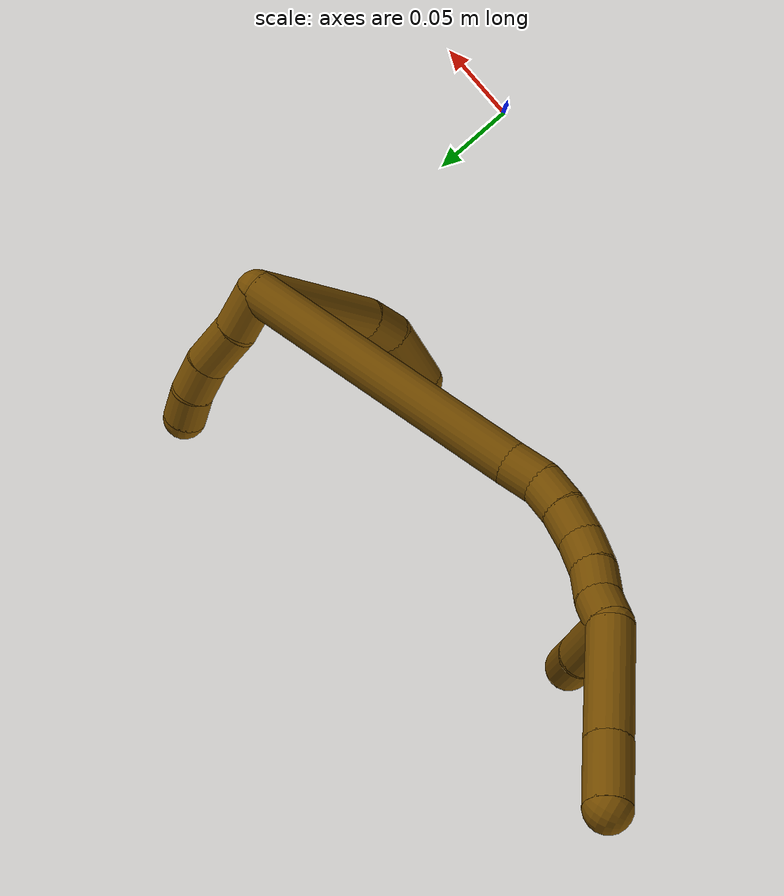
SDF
<sdf version="1.7">
 <world name="default">
  <model name="12">
   <static>0</static>
   <link name="12">
    <collision name="collision-cylinder-e_1_2_8">
     <pose>0.03473 0.01401 -0.021092 -2.55528 0.940822 -2.07014</pose>
     <geometry><cylinder><radius>0.0125</radius><length>0.08596</length></cylinder></geometry>
     <surface>
      <friction><ode><mu>1.16</mu><mu2>1.16</mu2><slip1>0</slip1><slip2>0</slip2></ode></friction>
      <contact><ode><kp>1e+06</kp><kd>1</kd><max_vel>0</max_vel><min_depth>0.001</min_depth></ode></contact>
     </surface>
    </collision>
    <visual name="visual-cylinder-e_1_2_8">
     <pose>0.03473 0.01401 -0.021092 -2.55528 0.940822 -2.07014</pose>
     <geometry><cylinder><radius>0.0125</radius><length>0.08596</length></cylinder></geometry>
     <material><ambient>0.466667 0.301961 0 1</ambient></material>
    </visual>
    <collision name="collision-cylinder-e_2_8_9">
     <pose>0.076921 0.033537 -0.048637 -2.43416 0.721001 -1.5915</pose>
     <geometry><cylinder><radius>0.0125</radius><length>0.022607</length></cylinder></geometry>
     <surface>
      <friction><ode><mu>1.16</mu><mu2>1.16</mu2><slip1>0</slip1><slip2>0</slip2></ode></friction>
      <contact><ode><kp>1e+06</kp><kd>1</kd><max_vel>0</max_vel><min_depth>0.001</min_depth></ode></contact>
     </surface>
    </collision>
    <visual name="visual-cylinder-e_2_8_9">
     <pose>0.076921 0.033537 -0.048637 -2.43416 0.721001 -1.5915</pose>
     <geometry><cylinder><radius>0.0125</radius><length>0.022607</length></cylinder></geometry>
     <material><ambient>0.466667 0.301961 0 1</ambient></material>
    </visual>
    <collision name="collision-cylinder-e_3_9_6">
     <pose>0.093076 0.054253 -0.066164 -2.20051 0.433026 -0.816313</pose>
     <geometry><cylinder><radius>0.0125</radius><length>0.041433</length></cylinder></geometry>
     <surface>
      <friction><ode><mu>1.16</mu><mu2>1.16</mu2><slip1>0</slip1><slip2>0</slip2></ode></friction>
      <contact><ode><kp>1e+06</kp><kd>1</kd><max_vel>0</max_vel><min_depth>0.001</min_depth></ode></contact>
     </surface>
    </collision>
    <visual name="visual-cylinder-e_3_9_6">
     <pose>0.093076 0.054253 -0.066164 -2.20051 0.433026 -0.816313</pose>
     <geometry><cylinder><radius>0.0125</radius><length>0.041433</length></cylinder></geometry>
     <material><ambient>0.466667 0.301961 0 1</ambient></material>
    </visual>
    <collision name="collision-cylinder-e_1_2_10">
     <pose>-0.002189 0.013397 0.001917 -1.42865 -0.160325 0.139088</pose>
     <geometry><cylinder><radius>0.0125</radius><length>0.027419</length></cylinder></geometry>
     <surface>
      <friction><ode><mu>1.16</mu><mu2>1.16</mu2><slip1>0</slip1><slip2>0</slip2></ode></friction>
      <contact><ode><kp>1e+06</kp><kd>1</kd><max_vel>0</max_vel><min_depth>0.001</min_depth></ode></contact>
     </surface>
    </collision>
    <visual name="visual-cylinder-e_1_2_10">
     <pose>-0.002189 0.013397 0.001917 -1.42865 -0.160325 0.139088</pose>
     <geometry><cylinder><radius>0.0125</radius><length>0.027419</length></cylinder></geometry>
     <material><ambient>0.466667 0.301961 0 1</ambient></material>
    </visual>
    <collision name="collision-cylinder-e_2_10_11">
     <pose>-0.005736 0.040921 0.008666 -1.24127 -0.090748 0.064895</pose>
     <geometry><cylinder><radius>0.0125</radius><length>0.029983</length></cylinder></geometry>
     <surface>
      <friction><ode><mu>1.16</mu><mu2>1.16</mu2><slip1>0</slip1><slip2>0</slip2></ode></friction>
      <contact><ode><kp>1e+06</kp><kd>1</kd><max_vel>0</max_vel><min_depth>0.001</min_depth></ode></contact>
     </surface>
    </collision>
    <visual name="visual-cylinder-e_2_10_11">
     <pose>-0.005736 0.040921 0.008666 -1.24127 -0.090748 0.064895</pose>
     <geometry><cylinder><radius>0.0125</radius><length>0.029983</length></cylinder></geometry>
     <material><ambient>0.466667 0.301961 0 1</ambient></material>
    </visual>
    <collision name="collision-cylinder-e_3_11_12">
     <pose>-0.008272 0.065981 0.014823 -1.45014 -0.106481 0.09437</pose>
     <geometry><cylinder><radius>0.0125</radius><length>0.022152</length></cylinder></geometry>
     <surface>
      <friction><ode><mu>1.16</mu><mu2>1.16</mu2><slip1>0</slip1><slip2>0</slip2></ode></friction>
      <contact><ode><kp>1e+06</kp><kd>1</kd><max_vel>0</max_vel><min_depth>0.001</min_depth></ode></contact>
     </surface>
    </collision>
    <visual name="visual-cylinder-e_3_11_12">
     <pose>-0.008272 0.065981 0.014823 -1.45014 -0.106481 0.09437</pose>
     <geometry><cylinder><radius>0.0125</radius><length>0.022152</length></cylinder></geometry>
     <material><ambient>0.466667 0.301961 0 1</ambient></material>
    </visual>
    <collision name="collision-cylinder-e_4_12_5">
     <pose>-0.008869 0.087117 0.016414 -1.54475 0.056744 -0.055286</pose>
     <geometry><cylinder><radius>0.0125</radius><length>0.020445</length></cylinder></geometry>
     <surface>
      <friction><ode><mu>1.16</mu><mu2>1.16</mu2><slip1>0</slip1><slip2>0</slip2></ode></friction>
      <contact><ode><kp>1e+06</kp><kd>1</kd><max_vel>0</max_vel><min_depth>0.001</min_depth></ode></contact>
     </surface>
    </collision>
    <visual name="visual-cylinder-e_4_12_5">
     <pose>-0.008869 0.087117 0.016414 -1.54475 0.056744 -0.055286</pose>
     <geometry><cylinder><radius>0.0125</radius><length>0.020445</length></cylinder></geometry>
     <material><ambient>0.466667 0.301961 0 1</ambient></material>
    </visual>
    <collision name="collision-cylinder-e_1_2_13">
     <pose>-0.01399 -0.002217 -0.087997 3.1164 -0.157611 -2.82528</pose>
     <geometry><cylinder><radius>0.0125</radius><length>0.178259</length></cylinder></geometry>
     <surface>
      <friction><ode><mu>1.16</mu><mu2>1.16</mu2><slip1>0</slip1><slip2>0</slip2></ode></friction>
      <contact><ode><kp>1e+06</kp><kd>1</kd><max_vel>0</max_vel><min_depth>0.001</min_depth></ode></contact>
     </surface>
    </collision>
    <visual name="visual-cylinder-e_1_2_13">
     <pose>-0.01399 -0.002217 -0.087997 3.1164 -0.157611 -2.82528</pose>
     <geometry><cylinder><radius>0.0125</radius><length>0.178259</length></cylinder></geometry>
     <material><ambient>0.466667 0.301961 0 1</ambient></material>
    </visual>
    <collision name="collision-cylinder-e_2_13_14">
     <pose>-0.030034 -0.005311 -0.186257 3.05637 -0.196858 -2.32637</pose>
     <geometry><cylinder><radius>0.0125</radius><length>0.021007</length></cylinder></geometry>
     <surface>
      <friction><ode><mu>1.16</mu><mu2>1.16</mu2><slip1>0</slip1><slip2>0</slip2></ode></friction>
      <contact><ode><kp>1e+06</kp><kd>1</kd><max_vel>0</max_vel><min_depth>0.001</min_depth></ode></contact>
     </surface>
    </collision>
    <visual name="visual-cylinder-e_2_13_14">
     <pose>-0.030034 -0.005311 -0.186257 3.05637 -0.196858 -2.32637</pose>
     <geometry><cylinder><radius>0.0125</radius><length>0.021007</length></cylinder></geometry>
     <material><ambient>0.466667 0.301961 0 1</ambient></material>
    </visual>
    <collision name="collision-cylinder-e_3_14_15">
     <pose>-0.036856 -0.005875 -0.205371 -3.10634 -0.493888 3.00196</pose>
     <geometry><cylinder><radius>0.0125</radius><length>0.020116</length></cylinder></geometry>
     <surface>
      <friction><ode><mu>1.16</mu><mu2>1.16</mu2><slip1>0</slip1><slip2>0</slip2></ode></friction>
      <contact><ode><kp>1e+06</kp><kd>1</kd><max_vel>0</max_vel><min_depth>0.001</min_depth></ode></contact>
     </surface>
    </collision>
    <visual name="visual-cylinder-e_3_14_15">
     <pose>-0.036856 -0.005875 -0.205371 -3.10634 -0.493888 3.00196</pose>
     <geometry><cylinder><radius>0.0125</radius><length>0.020116</length></cylinder></geometry>
     <material><ambient>0.466667 0.301961 0 1</ambient></material>
    </visual>
    <collision name="collision-cylinder-e_4_15_16">
     <pose>-0.047256 -0.004012 -0.22268 -2.9602 -0.579755 2.5497</pose>
     <geometry><cylinder><radius>0.0125</radius><length>0.02056</length></cylinder></geometry>
     <surface>
      <friction><ode><mu>1.16</mu><mu2>1.16</mu2><slip1>0</slip1><slip2>0</slip2></ode></friction>
      <contact><ode><kp>1e+06</kp><kd>1</kd><max_vel>0</max_vel><min_depth>0.001</min_depth></ode></contact>
     </surface>
    </collision>
    <visual name="visual-cylinder-e_4_15_16">
     <pose>-0.047256 -0.004012 -0.22268 -2.9602 -0.579755 2.5497</pose>
     <geometry><cylinder><radius>0.0125</radius><length>0.02056</length></cylinder></geometry>
     <material><ambient>0.466667 0.301961 0 1</ambient></material>
    </visual>
    <collision name="collision-cylinder-e_5_16_17">
     <pose>-0.060002 -0.001855 -0.238179 -3.05576 -0.788896 2.936</pose>
     <geometry><cylinder><radius>0.0125</radius><length>0.020055</length></cylinder></geometry>
     <surface>
      <friction><ode><mu>1.16</mu><mu2>1.16</mu2><slip1>0</slip1><slip2>0</slip2></ode></friction>
      <contact><ode><kp>1e+06</kp><kd>1</kd><max_vel>0</max_vel><min_depth>0.001</min_depth></ode></contact>
     </surface>
    </collision>
    <visual name="visual-cylinder-e_5_16_17">
     <pose>-0.060002 -0.001855 -0.238179 -3.05576 -0.788896 2.936</pose>
     <geometry><cylinder><radius>0.0125</radius><length>0.020055</length></cylinder></geometry>
     <material><ambient>0.466667 0.301961 0 1</ambient></material>
    </visual>
    <collision name="collision-cylinder-e_6_17_18">
     <pose>-0.075217 8.9e-05 -0.250931 -2.9116 -0.943929 2.69652</pose>
     <geometry><cylinder><radius>0.0125</radius><length>0.020002</length></cylinder></geometry>
     <surface>
      <friction><ode><mu>1.16</mu><mu2>1.16</mu2><slip1>0</slip1><slip2>0</slip2></ode></friction>
      <contact><ode><kp>1e+06</kp><kd>1</kd><max_vel>0</max_vel><min_depth>0.001</min_depth></ode></contact>
     </surface>
    </collision>
    <visual name="visual-cylinder-e_6_17_18">
     <pose>-0.075217 8.9e-05 -0.250931 -2.9116 -0.943929 2.69652</pose>
     <geometry><cylinder><radius>0.0125</radius><length>0.020002</length></cylinder></geometry>
     <material><ambient>0.466667 0.301961 0 1</ambient></material>
    </visual>
    <collision name="collision-cylinder-e_7_18_1">
     <pose>-0.091018 0.000374 -0.262936 2.97593 -0.878922 -2.79202</pose>
     <geometry><cylinder><radius>0.0125</radius><length>0.020001</length></cylinder></geometry>
     <surface>
      <friction><ode><mu>1.16</mu><mu2>1.16</mu2><slip1>0</slip1><slip2>0</slip2></ode></friction>
      <contact><ode><kp>1e+06</kp><kd>1</kd><max_vel>0</max_vel><min_depth>0.001</min_depth></ode></contact>
     </surface>
    </collision>
    <visual name="visual-cylinder-e_7_18_1">
     <pose>-0.091018 0.000374 -0.262936 2.97593 -0.878922 -2.79202</pose>
     <geometry><cylinder><radius>0.0125</radius><length>0.020001</length></cylinder></geometry>
     <material><ambient>0.466667 0.301961 0 1</ambient></material>
    </visual>
    <collision name="collision-cylinder-e_1_1_19">
     <pose>-0.125806 0.008278 -0.284097 -2.59942 -1.00093 2.20125</pose>
     <geometry><cylinder><radius>0.0125</radius><length>0.064343</length></cylinder></geometry>
     <surface>
      <friction><ode><mu>1.16</mu><mu2>1.16</mu2><slip1>0</slip1><slip2>0</slip2></ode></friction>
      <contact><ode><kp>1e+06</kp><kd>1</kd><max_vel>0</max_vel><min_depth>0.001</min_depth></ode></contact>
     </surface>
    </collision>
    <visual name="visual-cylinder-e_1_1_19">
     <pose>-0.125806 0.008278 -0.284097 -2.59942 -1.00093 2.20125</pose>
     <geometry><cylinder><radius>0.0125</radius><length>0.064343</length></cylinder></geometry>
     <material><ambient>0.466667 0.301961 0 1</ambient></material>
    </visual>
    <collision name="collision-cylinder-e_2_19_4">
     <pose>-0.167992 0.021827 -0.307259 -2.63591 -1.01008 2.26725</pose>
     <geometry><cylinder><radius>0.0125</radius><length>0.035657</length></cylinder></geometry>
     <surface>
      <friction><ode><mu>1.16</mu><mu2>1.16</mu2><slip1>0</slip1><slip2>0</slip2></ode></friction>
      <contact><ode><kp>1e+06</kp><kd>1</kd><max_vel>0</max_vel><min_depth>0.001</min_depth></ode></contact>
     </surface>
    </collision>
    <visual name="visual-cylinder-e_2_19_4">
     <pose>-0.167992 0.021827 -0.307259 -2.63591 -1.01008 2.26725</pose>
     <geometry><cylinder><radius>0.0125</radius><length>0.035657</length></cylinder></geometry>
     <material><ambient>0.466667 0.301961 0 1</ambient></material>
    </visual>
    <collision name="collision-cylinder-e_1_1_20">
     <pose>-0.089512 0.019214 -0.264624 -1.34334 0.423594 -0.338602</pose>
     <geometry><cylinder><radius>0.0125</radius><length>0.044795</length></cylinder></geometry>
     <surface>
      <friction><ode><mu>1.16</mu><mu2>1.16</mu2><slip1>0</slip1><slip2>0</slip2></ode></friction>
      <contact><ode><kp>1e+06</kp><kd>1</kd><max_vel>0</max_vel><min_depth>0.001</min_depth></ode></contact>
     </surface>
    </collision>
    <visual name="visual-cylinder-e_1_1_20">
     <pose>-0.089512 0.019214 -0.264624 -1.34334 0.423594 -0.338602</pose>
     <geometry><cylinder><radius>0.0125</radius><length>0.044795</length></cylinder></geometry>
     <material><ambient>0.466667 0.301961 0 1</ambient></material>
    </visual>
    <collision name="collision-cylinder-e_2_20_3">
     <pose>-0.062687 0.059886 -0.255589 -1.36068 0.692336 -0.567984</pose>
     <geometry><cylinder><radius>0.0125</radius><length>0.055205</length></cylinder></geometry>
     <surface>
      <friction><ode><mu>1.16</mu><mu2>1.16</mu2><slip1>0</slip1><slip2>0</slip2></ode></friction>
      <contact><ode><kp>1e+06</kp><kd>1</kd><max_vel>0</max_vel><min_depth>0.001</min_depth></ode></contact>
     </surface>
    </collision>
    <visual name="visual-cylinder-e_2_20_3">
     <pose>-0.062687 0.059886 -0.255589 -1.36068 0.692336 -0.567984</pose>
     <geometry><cylinder><radius>0.0125</radius><length>0.055205</length></cylinder></geometry>
     <material><ambient>0.466667 0.301961 0 1</ambient></material>
    </visual>
    <collision name="collision-sphere-3">
     <pose>-0.045067 0.080666 -0.251157 0 -0 0</pose>
     <geometry><sphere><radius>0.0125</radius></sphere></geometry>
     <surface>
      <friction><ode><mu>1.16</mu><mu2>1.16</mu2><slip1>0</slip1><slip2>0</slip2></ode></friction>
      <contact><ode><kp>1e+06</kp><kd>1</kd><max_vel>0</max_vel><min_depth>0.001</min_depth></ode></contact>
     </surface>
    </collision>
    <visual name="visual-sphere-3">
     <pose>-0.045067 0.080666 -0.251157 0 -0 0</pose>
     <geometry><sphere><radius>0.0125</radius></sphere></geometry>
     <material><ambient>0.466667 0.301961 0 1</ambient></material>
    </visual>
    <collision name="collision-sphere-20">
     <pose>-0.080306 0.039106 -0.26002 0 -0 0</pose>
     <geometry><sphere><radius>0.0125</radius></sphere></geometry>
     <surface>
      <friction><ode><mu>1.16</mu><mu2>1.16</mu2><slip1>0</slip1><slip2>0</slip2></ode></friction>
      <contact><ode><kp>1e+06</kp><kd>1</kd><max_vel>0</max_vel><min_depth>0.001</min_depth></ode></contact>
     </surface>
    </collision>
    <visual name="visual-sphere-20">
     <pose>-0.080306 0.039106 -0.26002 0 -0 0</pose>
     <geometry><sphere><radius>0.0125</radius></sphere></geometry>
     <material><ambient>0.466667 0.301961 0 1</ambient></material>
    </visual>
    <collision name="collision-sphere-4">
     <pose>-0.183091 0.02642 -0.315553 0 -0 0</pose>
     <geometry><sphere><radius>0.0125</radius></sphere></geometry>
     <surface>
      <friction><ode><mu>1.16</mu><mu2>1.16</mu2><slip1>0</slip1><slip2>0</slip2></ode></friction>
      <contact><ode><kp>1e+06</kp><kd>1</kd><max_vel>0</max_vel><min_depth>0.001</min_depth></ode></contact>
     </surface>
    </collision>
    <visual name="visual-sphere-4">
     <pose>-0.183091 0.02642 -0.315553 0 -0 0</pose>
     <geometry><sphere><radius>0.0125</radius></sphere></geometry>
     <material><ambient>0.466667 0.301961 0 1</ambient></material>
    </visual>
    <collision name="collision-sphere-11">
     <pose>-0.007094 0.055048 0.013497 0 -0 0</pose>
     <geometry><sphere><radius>0.0125</radius></sphere></geometry>
     <surface>
      <friction><ode><mu>1.16</mu><mu2>1.16</mu2><slip1>0</slip1><slip2>0</slip2></ode></friction>
      <contact><ode><kp>1e+06</kp><kd>1</kd><max_vel>0</max_vel><min_depth>0.001</min_depth></ode></contact>
     </surface>
    </collision>
    <visual name="visual-sphere-11">
     <pose>-0.007094 0.055048 0.013497 0 -0 0</pose>
     <geometry><sphere><radius>0.0125</radius></sphere></geometry>
     <material><ambient>0.466667 0.301961 0 1</ambient></material>
    </visual>
    <collision name="collision-sphere-10">
     <pose>-0.004377 0.026795 0.003835 0 -0 0</pose>
     <geometry><sphere><radius>0.0125</radius></sphere></geometry>
     <surface>
      <friction><ode><mu>1.16</mu><mu2>1.16</mu2><slip1>0</slip1><slip2>0</slip2></ode></friction>
      <contact><ode><kp>1e+06</kp><kd>1</kd><max_vel>0</max_vel><min_depth>0.001</min_depth></ode></contact>
     </surface>
    </collision>
    <visual name="visual-sphere-10">
     <pose>-0.004377 0.026795 0.003835 0 -0 0</pose>
     <geometry><sphere><radius>0.0125</radius></sphere></geometry>
     <material><ambient>0.466667 0.301961 0 1</ambient></material>
    </visual>
    <collision name="collision-sphere-6">
     <pose>0.101769 0.06945 -0.077238 0 -0 0</pose>
     <geometry><sphere><radius>0.0125</radius></sphere></geometry>
     <surface>
      <friction><ode><mu>1.16</mu><mu2>1.16</mu2><slip1>0</slip1><slip2>0</slip2></ode></friction>
      <contact><ode><kp>1e+06</kp><kd>1</kd><max_vel>0</max_vel><min_depth>0.001</min_depth></ode></contact>
     </surface>
    </collision>
    <visual name="visual-sphere-6">
     <pose>0.101769 0.06945 -0.077238 0 -0 0</pose>
     <geometry><sphere><radius>0.0125</radius></sphere></geometry>
     <material><ambient>0.466667 0.301961 0 1</ambient></material>
    </visual>
    <collision name="collision-sphere-9">
     <pose>0.084383 0.039055 -0.05509 0 -0 0</pose>
     <geometry><sphere><radius>0.0125</radius></sphere></geometry>
     <surface>
      <friction><ode><mu>1.16</mu><mu2>1.16</mu2><slip1>0</slip1><slip2>0</slip2></ode></friction>
      <contact><ode><kp>1e+06</kp><kd>1</kd><max_vel>0</max_vel><min_depth>0.001</min_depth></ode></contact>
     </surface>
    </collision>
    <visual name="visual-sphere-9">
     <pose>0.084383 0.039055 -0.05509 0 -0 0</pose>
     <geometry><sphere><radius>0.0125</radius></sphere></geometry>
     <material><ambient>0.466667 0.301961 0 1</ambient></material>
    </visual>
    <collision name="collision-sphere-2">
     <geometry><sphere><radius>0.0125</radius></sphere></geometry>
     <surface>
      <friction><ode><mu>1.16</mu><mu2>1.16</mu2><slip1>0</slip1><slip2>0</slip2></ode></friction>
      <contact><ode><kp>1e+06</kp><kd>1</kd><max_vel>0</max_vel><min_depth>0.001</min_depth></ode></contact>
     </surface>
    </collision>
    <visual name="visual-sphere-2">
     <geometry><sphere><radius>0.0125</radius></sphere></geometry>
     <material><ambient>0.466667 0.301961 0 1</ambient></material>
    </visual>
    <collision name="collision-sphere-19">
     <pose>-0.152894 0.017234 -0.298965 0 -0 0</pose>
     <geometry><sphere><radius>0.0125</radius></sphere></geometry>
     <surface>
      <friction><ode><mu>1.16</mu><mu2>1.16</mu2><slip1>0</slip1><slip2>0</slip2></ode></friction>
      <contact><ode><kp>1e+06</kp><kd>1</kd><max_vel>0</max_vel><min_depth>0.001</min_depth></ode></contact>
     </surface>
    </collision>
    <visual name="visual-sphere-19">
     <pose>-0.152894 0.017234 -0.298965 0 -0 0</pose>
     <geometry><sphere><radius>0.0125</radius></sphere></geometry>
     <material><ambient>0.466667 0.301961 0 1</ambient></material>
    </visual>
    <collision name="collision-sphere-8">
     <pose>0.06946 0.028019 -0.042184 0 -0 0</pose>
     <geometry><sphere><radius>0.0125</radius></sphere></geometry>
     <surface>
      <friction><ode><mu>1.16</mu><mu2>1.16</mu2><slip1>0</slip1><slip2>0</slip2></ode></friction>
      <contact><ode><kp>1e+06</kp><kd>1</kd><max_vel>0</max_vel><min_depth>0.001</min_depth></ode></contact>
     </surface>
    </collision>
    <visual name="visual-sphere-8">
     <pose>0.06946 0.028019 -0.042184 0 -0 0</pose>
     <geometry><sphere><radius>0.0125</radius></sphere></geometry>
     <material><ambient>0.466667 0.301961 0 1</ambient></material>
    </visual>
    <collision name="collision-sphere-12">
     <pose>-0.009449 0.076915 0.016148 0 -0 0</pose>
     <geometry><sphere><radius>0.0125</radius></sphere></geometry>
     <surface>
      <friction><ode><mu>1.16</mu><mu2>1.16</mu2><slip1>0</slip1><slip2>0</slip2></ode></friction>
      <contact><ode><kp>1e+06</kp><kd>1</kd><max_vel>0</max_vel><min_depth>0.001</min_depth></ode></contact>
     </surface>
    </collision>
    <visual name="visual-sphere-12">
     <pose>-0.009449 0.076915 0.016148 0 -0 0</pose>
     <geometry><sphere><radius>0.0125</radius></sphere></geometry>
     <material><ambient>0.466667 0.301961 0 1</ambient></material>
    </visual>
    <collision name="collision-sphere-5">
     <pose>-0.008289 0.09732 0.01668 0 -0 0</pose>
     <geometry><sphere><radius>0.0125</radius></sphere></geometry>
     <surface>
      <friction><ode><mu>1.16</mu><mu2>1.16</mu2><slip1>0</slip1><slip2>0</slip2></ode></friction>
      <contact><ode><kp>1e+06</kp><kd>1</kd><max_vel>0</max_vel><min_depth>0.001</min_depth></ode></contact>
     </surface>
    </collision>
    <visual name="visual-sphere-5">
     <pose>-0.008289 0.09732 0.01668 0 -0 0</pose>
     <geometry><sphere><radius>0.0125</radius></sphere></geometry>
     <material><ambient>0.466667 0.301961 0 1</ambient></material>
    </visual>
    <collision name="collision-sphere-13">
     <pose>-0.027979 -0.004434 -0.175994 0 -0 0</pose>
     <geometry><sphere><radius>0.0125</radius></sphere></geometry>
     <surface>
      <friction><ode><mu>1.16</mu><mu2>1.16</mu2><slip1>0</slip1><slip2>0</slip2></ode></friction>
      <contact><ode><kp>1e+06</kp><kd>1</kd><max_vel>0</max_vel><min_depth>0.001</min_depth></ode></contact>
     </surface>
    </collision>
    <visual name="visual-sphere-13">
     <pose>-0.027979 -0.004434 -0.175994 0 -0 0</pose>
     <geometry><sphere><radius>0.0125</radius></sphere></geometry>
     <material><ambient>0.466667 0.301961 0 1</ambient></material>
    </visual>
    <collision name="collision-sphere-14">
     <pose>-0.032088 -0.006187 -0.19652 0 -0 0</pose>
     <geometry><sphere><radius>0.0125</radius></sphere></geometry>
     <surface>
      <friction><ode><mu>1.16</mu><mu2>1.16</mu2><slip1>0</slip1><slip2>0</slip2></ode></friction>
      <contact><ode><kp>1e+06</kp><kd>1</kd><max_vel>0</max_vel><min_depth>0.001</min_depth></ode></contact>
     </surface>
    </collision>
    <visual name="visual-sphere-14">
     <pose>-0.032088 -0.006187 -0.19652 0 -0 0</pose>
     <geometry><sphere><radius>0.0125</radius></sphere></geometry>
     <material><ambient>0.466667 0.301961 0 1</ambient></material>
    </visual>
    <collision name="collision-sphere-15">
     <pose>-0.041624 -0.005563 -0.214221 0 -0 0</pose>
     <geometry><sphere><radius>0.0125</radius></sphere></geometry>
     <surface>
      <friction><ode><mu>1.16</mu><mu2>1.16</mu2><slip1>0</slip1><slip2>0</slip2></ode></friction>
      <contact><ode><kp>1e+06</kp><kd>1</kd><max_vel>0</max_vel><min_depth>0.001</min_depth></ode></contact>
     </surface>
    </collision>
    <visual name="visual-sphere-15">
     <pose>-0.041624 -0.005563 -0.214221 0 -0 0</pose>
     <geometry><sphere><radius>0.0125</radius></sphere></geometry>
     <material><ambient>0.466667 0.301961 0 1</ambient></material>
    </visual>
    <collision name="collision-sphere-16">
     <pose>-0.052887 -0.00246 -0.231139 0 -0 0</pose>
     <geometry><sphere><radius>0.0125</radius></sphere></geometry>
     <surface>
      <friction><ode><mu>1.16</mu><mu2>1.16</mu2><slip1>0</slip1><slip2>0</slip2></ode></friction>
      <contact><ode><kp>1e+06</kp><kd>1</kd><max_vel>0</max_vel><min_depth>0.001</min_depth></ode></contact>
     </surface>
    </collision>
    <visual name="visual-sphere-16">
     <pose>-0.052887 -0.00246 -0.231139 0 -0 0</pose>
     <geometry><sphere><radius>0.0125</radius></sphere></geometry>
     <material><ambient>0.466667 0.301961 0 1</ambient></material>
    </visual>
    <collision name="collision-sphere-17">
     <pose>-0.067118 -0.001249 -0.245218 0 -0 0</pose>
     <geometry><sphere><radius>0.0125</radius></sphere></geometry>
     <surface>
      <friction><ode><mu>1.16</mu><mu2>1.16</mu2><slip1>0</slip1><slip2>0</slip2></ode></friction>
      <contact><ode><kp>1e+06</kp><kd>1</kd><max_vel>0</max_vel><min_depth>0.001</min_depth></ode></contact>
     </surface>
    </collision>
    <visual name="visual-sphere-17">
     <pose>-0.067118 -0.001249 -0.245218 0 -0 0</pose>
     <geometry><sphere><radius>0.0125</radius></sphere></geometry>
     <material><ambient>0.466667 0.301961 0 1</ambient></material>
    </visual>
    <collision name="collision-sphere-18">
     <pose>-0.083317 0.001426 -0.256643 0 -0 0</pose>
     <geometry><sphere><radius>0.0125</radius></sphere></geometry>
     <surface>
      <friction><ode><mu>1.16</mu><mu2>1.16</mu2><slip1>0</slip1><slip2>0</slip2></ode></friction>
      <contact><ode><kp>1e+06</kp><kd>1</kd><max_vel>0</max_vel><min_depth>0.001</min_depth></ode></contact>
     </surface>
    </collision>
    <visual name="visual-sphere-18">
     <pose>-0.083317 0.001426 -0.256643 0 -0 0</pose>
     <geometry><sphere><radius>0.0125</radius></sphere></geometry>
     <material><ambient>0.466667 0.301961 0 1</ambient></material>
    </visual>
    <collision name="collision-sphere-1">
     <pose>-0.098719 -0.000678 -0.269229 0 -0 0</pose>
     <geometry><sphere><radius>0.0125</radius></sphere></geometry>
     <surface>
      <friction><ode><mu>1.16</mu><mu2>1.16</mu2><slip1>0</slip1><slip2>0</slip2></ode></friction>
      <contact><ode><kp>1e+06</kp><kd>1</kd><max_vel>0</max_vel><min_depth>0.001</min_depth></ode></contact>
     </surface>
    </collision>
    <visual name="visual-sphere-1">
     <pose>-0.098719 -0.000678 -0.269229 0 -0 0</pose>
     <geometry><sphere><radius>0.0125</radius></sphere></geometry>
     <material><ambient>0.466667 0.301961 0 1</ambient></material>
    </visual>
    <inertial>
     <pose>-0.030583 0.018386 -0.137653 0 -0 0</pose>
     <mass>0.75</mass>
     <inertia>
      <ixx>-0.00063</ixx>
      <ixy>0</ixy>
      <ixz>0</ixz>
      <iyy>0.00039</iyy>
      <iyz>0</iyz>
      <izz>-3.7e-05</izz>
     </inertia>
    </inertial>
   </link>
   <pose>0.005519 0.183933 0.12047 -1.9346 0.891439 -1.52936</pose>
  </model>
 </world>
</sdf>
